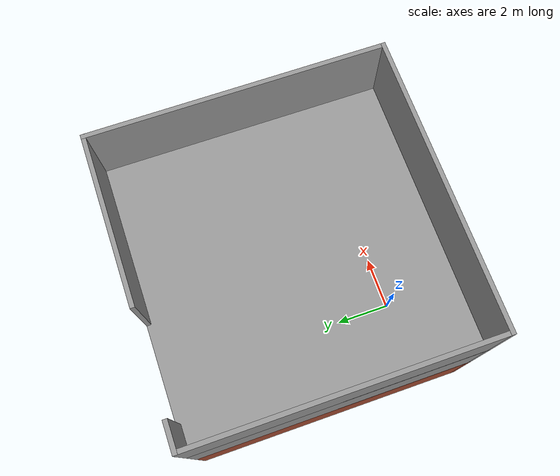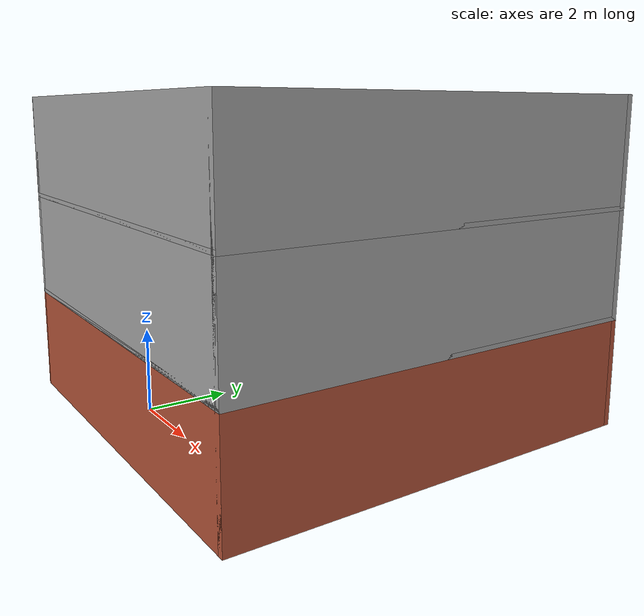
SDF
<?xml version='1.0'?>
<sdf version='1.6'>
  <model name='building_bricks'>
    <pose frame=''>1.735 3.495 0 0 -0 0</pose>
    <link name='Floor_0'>
      <collision name='Floor_0_Collision'>
        <geometry>
          <box>
            <size>10 10 0.1</size>
          </box>
        </geometry>
        <pose frame=''>0 0 0.05 0 -0 0</pose>
      </collision>
      <visual name='Floor_0_Visual'>
        <pose frame=''>0 0 0.05 0 -0 0</pose>
        <geometry>
          <box>
            <size>10 10 0.1</size>
          </box>
        </geometry>
        <material>
          <script>
            <uri>file://media/materials/scripts/gazebo.material</uri>
            <name>Gazebo/Grey</name>
          </script>
          <ambient>1 1 1 1</ambient>
        </material>
      </visual>
      <pose frame=''>0 0 2.5 0 -0 0</pose>
    </link>
    <link name='Floor_1'>
      <collision name='Floor_1_Collision'>
        <geometry>
          <box>
            <size>10 10 0.1</size>
          </box>
        </geometry>
        <pose frame=''>0 0 0.05 0 -0 0</pose>
      </collision>
      <visual name='Floor_1_Visual'>
        <pose frame=''>0 0 0.05 0 -0 0</pose>
        <geometry>
          <box>
            <size>10 10 0.1</size>
          </box>
        </geometry>
        <material>
          <script>
            <uri>file://media/materials/scripts/gazebo.material</uri>
            <name>Gazebo/Grey</name>
          </script>
          <ambient>1 1 1 1</ambient>
        </material>
      </visual>
      <pose frame=''>0 0 5 0 -0 0</pose>
    </link>
    <link name='Wall_0'>
      <collision name='Wall_0_Collision'>
        <geometry>
          <box>
            <size>10 0.15 2.5</size>
          </box>
        </geometry>
        <pose frame=''>0 0 1.25 0 -0 0</pose>
      </collision>
      <visual name='Wall_0_Visual'>
        <pose frame=''>0 0 1.25 0 -0 0</pose>
        <geometry>
          <box>
            <size>10 0.15 2.5</size>
          </box>
        </geometry>
        <material>
          <script>
            <uri>file://media/materials/scripts/gazebo.material</uri>
            <name>Gazebo/Bricks</name>
          </script>
          <ambient>1 1 1 1</ambient>
        </material>
      </visual>
      <pose frame=''>0 -4.925 0 0 -0 0</pose>
    </link>
    <link name='Wall_10'>
      <collision name='Wall_10_Collision'>
        <geometry>
          <box>
            <size>10 0.15 2.5</size>
          </box>
        </geometry>
        <pose frame=''>0 0 1.25 0 -0 0</pose>
      </collision>
      <visual name='Wall_10_Visual'>
        <pose frame=''>0 0 1.25 0 -0 0</pose>
        <geometry>
          <box>
            <size>10 0.15 2.5</size>
          </box>
        </geometry>
        <material>
          <script>
            <uri>file://media/materials/scripts/gazebo.material</uri>
            <name>Gazebo/Grey</name>
          </script>
          <ambient>1 1 1 1</ambient>
        </material>
      </visual>
      <pose frame=''>4.925 0 2.5 0 -0 1.5708</pose>
    </link>
    <link name='Wall_11'>
      <collision name='Wall_11_Collision'>
        <geometry>
          <box>
            <size>5.75 0.15 2.5</size>
          </box>
        </geometry>
        <pose frame=''>0 0 1.25 0 -0 0</pose>
      </collision>
      <visual name='Wall_11_Visual'>
        <pose frame=''>0 0 1.25 0 -0 0</pose>
        <geometry>
          <box>
            <size>5.75 0.15 2.5</size>
          </box>
        </geometry>
        <material>
          <script>
            <uri>file://media/materials/scripts/gazebo.material</uri>
            <name>Gazebo/Grey</name>
          </script>
          <ambient>1 1 1 1</ambient>
        </material>
      </visual>
      <pose frame=''>2.125 4.925 2.5 0 -0 3.14159</pose>
    </link>
    <link name='Wall_12'>
      <collision name='Wall_12_Collision'>
        <geometry>
          <box>
            <size>10 0.15 2.5</size>
          </box>
        </geometry>
        <pose frame=''>0 0 1.25 0 -0 0</pose>
      </collision>
      <visual name='Wall_12_Visual'>
        <pose frame=''>0 0 1.25 0 -0 0</pose>
        <geometry>
          <box>
            <size>10 0.15 2.5</size>
          </box>
        </geometry>
        <material>
          <script>
            <uri>file://media/materials/scripts/gazebo.material</uri>
            <name>Gazebo/Grey</name>
          </script>
          <ambient>1 1 1 1</ambient>
        </material>
      </visual>
      <pose frame=''>-4.925 0 2.5 0 -0 1.5708</pose>
    </link>
    <link name='Wall_13'>
      <collision name='Wall_13_Collision'>
        <geometry>
          <box>
            <size>1 0.15 2.5</size>
          </box>
        </geometry>
        <pose frame=''>0 0 1.25 0 -0 0</pose>
      </collision>
      <visual name='Wall_13_Visual'>
        <pose frame=''>0 0 1.25 0 -0 0</pose>
        <geometry>
          <box>
            <size>1 0.15 2.5</size>
          </box>
        </geometry>
        <material>
          <script>
            <uri>file://media/materials/scripts/gazebo.material</uri>
            <name>Gazebo/Grey</name>
          </script>
          <ambient>1 1 1 1</ambient>
        </material>
      </visual>
      <pose frame=''>-4.5 4.925 2.5 0 -0 0</pose>
    </link>
    <link name='Wall_14'>
      <collision name='Wall_14_Collision'>
        <geometry>
          <box>
            <size>10 0.15 2.5</size>
          </box>
        </geometry>
        <pose frame=''>0 0 1.25 0 -0 0</pose>
      </collision>
      <visual name='Wall_14_Visual'>
        <pose frame=''>0 0 1.25 0 -0 0</pose>
        <geometry>
          <box>
            <size>10 0.15 2.5</size>
          </box>
        </geometry>
        <material>
          <script>
            <uri>file://media/materials/scripts/gazebo.material</uri>
            <name>Gazebo/Grey</name>
          </script>
          <ambient>1 1 1 1</ambient>
        </material>
      </visual>
      <pose frame=''>0 -4.925 5 0 -0 0</pose>
    </link>
    <link name='Wall_15'>
      <collision name='Wall_15_Collision'>
        <geometry>
          <box>
            <size>10 0.15 2.5</size>
          </box>
        </geometry>
        <pose frame=''>0 0 1.25 0 -0 0</pose>
      </collision>
      <visual name='Wall_15_Visual'>
        <pose frame=''>0 0 1.25 0 -0 0</pose>
        <geometry>
          <box>
            <size>10 0.15 2.5</size>
          </box>
        </geometry>
        <material>
          <script>
            <uri>file://media/materials/scripts/gazebo.material</uri>
            <name>Gazebo/Grey</name>
          </script>
          <ambient>1 1 1 1</ambient>
        </material>
      </visual>
      <pose frame=''>4.925 0 5 0 -0 1.5708</pose>
    </link>
    <link name='Wall_16'>
      <collision name='Wall_16_Collision'>
        <geometry>
          <box>
            <size>5.75 0.15 2.5</size>
          </box>
        </geometry>
        <pose frame=''>0 0 1.25 0 -0 0</pose>
      </collision>
      <visual name='Wall_16_Visual'>
        <pose frame=''>0 0 1.25 0 -0 0</pose>
        <geometry>
          <box>
            <size>5.75 0.15 2.5</size>
          </box>
        </geometry>
        <material>
          <script>
            <uri>file://media/materials/scripts/gazebo.material</uri>
            <name>Gazebo/Grey</name>
          </script>
          <ambient>1 1 1 1</ambient>
        </material>
      </visual>
      <pose frame=''>2.125 4.925 5 0 -0 3.14159</pose>
    </link>
    <link name='Wall_17'>
      <collision name='Wall_17_Collision'>
        <geometry>
          <box>
            <size>10 0.15 2.5</size>
          </box>
        </geometry>
        <pose frame=''>0 0 1.25 0 -0 0</pose>
      </collision>
      <visual name='Wall_17_Visual'>
        <pose frame=''>0 0 1.25 0 -0 0</pose>
        <geometry>
          <box>
            <size>10 0.15 2.5</size>
          </box>
        </geometry>
        <material>
          <script>
            <uri>file://media/materials/scripts/gazebo.material</uri>
            <name>Gazebo/Grey</name>
          </script>
          <ambient>1 1 1 1</ambient>
        </material>
      </visual>
      <pose frame=''>-4.925 0 5 0 -0 1.5708</pose>
    </link>
    <link name='Wall_18'>
      <collision name='Wall_18_Collision'>
        <geometry>
          <box>
            <size>1 0.15 2.5</size>
          </box>
        </geometry>
        <pose frame=''>0 0 1.25 0 -0 0</pose>
      </collision>
      <visual name='Wall_18_Visual'>
        <pose frame=''>0 0 1.25 0 -0 0</pose>
        <geometry>
          <box>
            <size>1 0.15 2.5</size>
          </box>
        </geometry>
        <material>
          <script>
            <uri>file://media/materials/scripts/gazebo.material</uri>
            <name>Gazebo/Grey</name>
          </script>
          <ambient>1 1 1 1</ambient>
        </material>
      </visual>
      <pose frame=''>-4.5 4.925 5 0 -0 0</pose>
    </link>
    <link name='Wall_3'>
      <collision name='Wall_3_Collision'>
        <geometry>
          <box>
            <size>10 0.15 2.5</size>
          </box>
        </geometry>
        <pose frame=''>0 0 1.25 0 -0 0</pose>
      </collision>
      <visual name='Wall_3_Visual'>
        <pose frame=''>0 0 1.25 0 -0 0</pose>
        <geometry>
          <box>
            <size>10 0.15 2.5</size>
          </box>
        </geometry>
        <material>
          <script>
            <uri>file://media/materials/scripts/gazebo.material</uri>
            <name>Gazebo/Bricks</name>
          </script>
          <ambient>1 1 1 1</ambient>
        </material>
      </visual>
      <pose frame=''>4.925 0 0 0 -0 1.5708</pose>
    </link>
    <link name='Wall_4'>
      <collision name='Wall_4_Collision'>
        <geometry>
          <box>
            <size>5.75 0.15 2.5</size>
          </box>
        </geometry>
        <pose frame=''>0 0 1.25 0 -0 0</pose>
      </collision>
      <visual name='Wall_4_Visual'>
        <pose frame=''>0 0 1.25 0 -0 0</pose>
        <geometry>
          <box>
            <size>5.75 0.15 2.5</size>
          </box>
        </geometry>
        <material>
          <script>
            <uri>file://media/materials/scripts/gazebo.material</uri>
            <name>Gazebo/Bricks</name>
          </script>
          <ambient>1 1 1 1</ambient>
        </material>
      </visual>
      <pose frame=''>2.125 4.925 0 0 -0 3.14159</pose>
    </link>
    <link name='Wall_6'>
      <collision name='Wall_6_Collision'>
        <geometry>
          <box>
            <size>10 0.15 2.5</size>
          </box>
        </geometry>
        <pose frame=''>0 0 1.25 0 -0 0</pose>
      </collision>
      <visual name='Wall_6_Visual'>
        <pose frame=''>0 0 1.25 0 -0 0</pose>
        <geometry>
          <box>
            <size>10 0.15 2.5</size>
          </box>
        </geometry>
        <material>
          <script>
            <uri>file://media/materials/scripts/gazebo.material</uri>
            <name>Gazebo/Bricks</name>
          </script>
          <ambient>1 1 1 1</ambient>
        </material>
      </visual>
      <pose frame=''>-4.925 0 0 0 -0 1.5708</pose>
    </link>
    <link name='Wall_7'>
      <collision name='Wall_7_Collision'>
        <geometry>
          <box>
            <size>1 0.15 2.5</size>
          </box>
        </geometry>
        <pose frame=''>0 0 1.25 0 -0 0</pose>
      </collision>
      <visual name='Wall_7_Visual'>
        <pose frame=''>0 0 1.25 0 -0 0</pose>
        <geometry>
          <box>
            <size>1 0.15 2.5</size>
          </box>
        </geometry>
        <material>
          <script>
            <uri>file://media/materials/scripts/gazebo.material</uri>
            <name>Gazebo/Bricks</name>
          </script>
          <ambient>1 1 1 1</ambient>
        </material>
      </visual>
      <pose frame=''>-4.5 4.925 0 0 -0 0</pose>
    </link>
    <link name='Wall_9'>
      <collision name='Wall_9_Collision'>
        <geometry>
          <box>
            <size>10 0.15 2.5</size>
          </box>
        </geometry>
        <pose frame=''>0 0 1.25 0 -0 0</pose>
      </collision>
      <visual name='Wall_9_Visual'>
        <pose frame=''>0 0 1.25 0 -0 0</pose>
        <geometry>
          <box>
            <size>10 0.15 2.5</size>
          </box>
        </geometry>
        <material>
          <script>
            <uri>file://media/materials/scripts/gazebo.material</uri>
            <name>Gazebo/Grey</name>
          </script>
          <ambient>1 1 1 1</ambient>
        </material>
      </visual>
      <pose frame=''>0 -4.925 2.5 0 -0 0</pose>
    </link>
    <static>1</static>
  </model>
</sdf>
